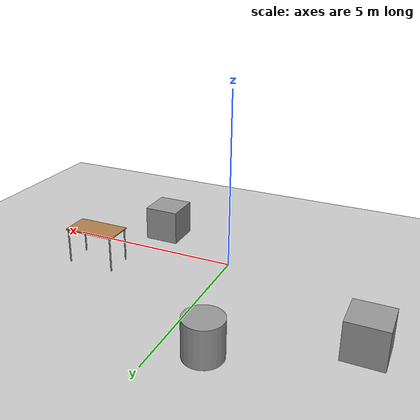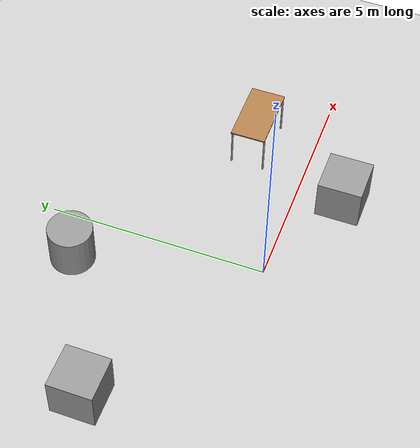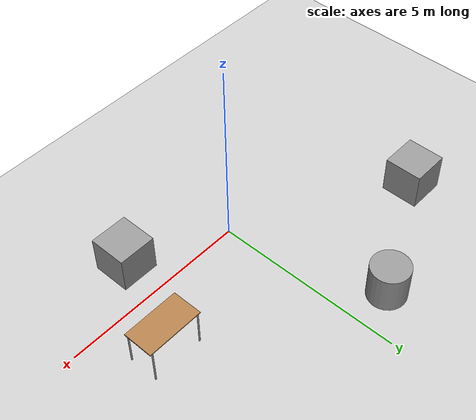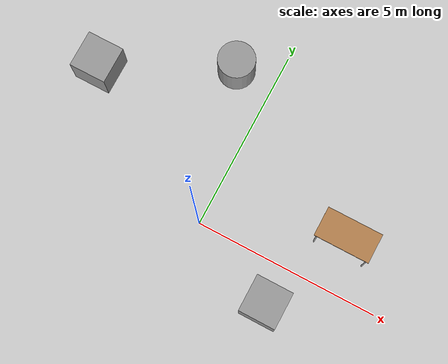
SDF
<sdf version="1.6">
 <world name="default">
  <light name="sun" type="directional">
   <pose>0 0 10 0 -0 0</pose>
   <diffuse>0.8 0.8 0.8 1</diffuse>
   <specular>0.2 0.2 0.2 1</specular>
   <attenuation>
    <range>1000</range>
    <constant>0.9</constant>
    <linear>0.01</linear>
    <quadratic>0.001</quadratic>
   </attenuation>
   <direction>-0.5 0.1 -0.9</direction>
  </light>
  <model name="ground_plane">
   <static>1</static>
   <link name="link">
    <collision name="collision">
     <geometry><plane><normal>0 0 1</normal><size>100 100</size></plane></geometry>
     <surface>
      <contact><collide_bitmask>65535</collide_bitmask></contact>
      <friction><ode><mu>100</mu><mu2>50</mu2></ode></friction>
     </surface>
    </collision>
    <visual name="visual">
     <cast_shadows>0</cast_shadows>
     <geometry><plane><normal>0 0 1</normal><size>100 100</size></plane></geometry>
     <material>
      <script><uri>file://media/materials/scripts/gazebo.material</uri><name>Gazebo/Grey</name></script>
     </material>
    </visual>
   </link>
  </model>
  <gravity>0 0 -9.8</gravity>
  <magnetic_field>6e-06 2.3e-05 -4.2e-05</magnetic_field>
  <atmosphere type="adiabatic"/>
  <physics name="default_physics" default="0" type="ode">
   <max_step_size>0.001</max_step_size>
   <real_time_factor>1</real_time_factor>
   <real_time_update_rate>1000</real_time_update_rate>
  </physics>
  <scene><ambient>0.4 0.4 0.4 1</ambient><background>0.7 0.7 0.7 1</background><shadows>1</shadows></scene>
  <audio><device>default</device></audio>
  <spherical_coordinates>
   <surface_model>EARTH_WGS84</surface_model>
   <latitude_deg>0</latitude_deg>
   <longitude_deg>0</longitude_deg>
   <elevation>0</elevation>
   <heading_deg>0</heading_deg>
  </spherical_coordinates>
  <model name="unit_box">
   <pose>-4.26808 2.44192 0.5 -0 -0 -0</pose>
   <link name="link">
    <inertial>
     <mass>1</mass>
     <inertia>
      <ixx>0.166667</ixx>
      <ixy>0</ixy>
      <ixz>0</ixz>
      <iyy>0.166667</iyy>
      <iyz>0</iyz>
      <izz>0.166667</izz>
     </inertia>
    </inertial>
    <collision name="collision"><geometry><box><size>1 1 1</size></box></geometry></collision>
    <visual name="visual">
     <geometry><box><size>1 1 1</size></box></geometry>
     <material>
      <script><name>Gazebo/Grey</name><uri>file://media/materials/scripts/gazebo.material</uri></script>
     </material>
    </visual>
   </link>
  </model>
  <model name="unit_box_0">
   <pose>2.4545 -1.05257 0.5 0 -0 0</pose>
   <link name="link">
    <inertial>
     <mass>1</mass>
     <inertia>
      <ixx>0.166667</ixx>
      <ixy>0</ixy>
      <ixz>0</ixz>
      <iyy>0.166667</iyy>
      <iyz>0</iyz>
      <izz>0.166667</izz>
     </inertia>
    </inertial>
    <collision name="collision"><geometry><box><size>1 1 1</size></box></geometry></collision>
    <visual name="visual">
     <geometry><box><size>1 1 1</size></box></geometry>
     <material>
      <script><name>Gazebo/Grey</name><uri>file://media/materials/scripts/gazebo.material</uri></script>
     </material>
    </visual>
   </link>
  </model>
  <model name="unit_cylinder">
   <pose>-1.06706 4.06157 0.499997 3e-06 4e-06 -0</pose>
   <link name="link">
    <inertial>
     <mass>1</mass>
     <inertia><ixx>0.145833</ixx><ixy>0</ixy><ixz>0</ixz><iyy>0.145833</iyy><iyz>0</iyz><izz>0.125</izz></inertia>
    </inertial>
    <collision name="collision">
     <geometry><cylinder><radius>0.5</radius><length>1</length></cylinder></geometry>
    </collision>
    <visual name="visual">
     <geometry><cylinder><radius>0.5</radius><length>1</length></cylinder></geometry>
     <material>
      <script><name>Gazebo/Grey</name><uri>file://media/materials/scripts/gazebo.material</uri></script>
     </material>
    </visual>
   </link>
  </model>
  <model name="table">
   <static>1</static>
   <link name="link">
    <collision name="surface">
     <pose>0 0 1 0 -0 0</pose>
     <geometry><box><size>1.5 0.8 0.03</size></box></geometry>
     <surface><friction><ode><mu>0.6</mu><mu2>0.6</mu2></ode></friction></surface>
    </collision>
    <visual name="visual1">
     <pose>0 0 1 0 -0 0</pose>
     <geometry><box><size>1.5 0.8 0.03</size></box></geometry>
     <material>
      <script><uri>file://media/materials/scripts/gazebo.material</uri><name>Gazebo/Wood</name></script>
     </material>
    </visual>
    <collision name="front_left_leg">
     <pose>0.68 0.38 0.5 0 -0 0</pose>
     <geometry><cylinder><radius>0.02</radius><length>1</length></cylinder></geometry>
    </collision>
    <visual name="front_left_leg">
     <pose>0.68 0.38 0.5 0 -0 0</pose>
     <geometry><cylinder><radius>0.02</radius><length>1</length></cylinder></geometry>
     <material>
      <script><uri>file://media/materials/scripts/gazebo.material</uri><name>Gazebo/Grey</name></script>
     </material>
    </visual>
    <collision name="front_right_leg">
     <pose>0.68 -0.38 0.5 0 -0 0</pose>
     <geometry><cylinder><radius>0.02</radius><length>1</length></cylinder></geometry>
    </collision>
    <visual name="front_right_leg">
     <pose>0.68 -0.38 0.5 0 -0 0</pose>
     <geometry><cylinder><radius>0.02</radius><length>1</length></cylinder></geometry>
     <material>
      <script><uri>file://media/materials/scripts/gazebo.material</uri><name>Gazebo/Grey</name></script>
     </material>
    </visual>
    <collision name="back_right_leg">
     <pose>-0.68 -0.38 0.5 0 -0 0</pose>
     <geometry><cylinder><radius>0.02</radius><length>1</length></cylinder></geometry>
    </collision>
    <visual name="back_right_leg">
     <pose>-0.68 -0.38 0.5 0 -0 0</pose>
     <geometry><cylinder><radius>0.02</radius><length>1</length></cylinder></geometry>
     <material>
      <script><uri>file://media/materials/scripts/gazebo.material</uri><name>Gazebo/Grey</name></script>
     </material>
    </visual>
    <collision name="back_left_leg">
     <pose>-0.68 0.38 0.5 0 -0 0</pose>
     <geometry><cylinder><radius>0.02</radius><length>1</length></cylinder></geometry>
    </collision>
    <visual name="back_left_leg">
     <pose>-0.68 0.38 0.5 0 -0 0</pose>
     <geometry><cylinder><radius>0.02</radius><length>1</length></cylinder></geometry>
     <material>
      <script><uri>file://media/materials/scripts/gazebo.material</uri><name>Gazebo/Grey</name></script>
     </material>
    </visual>
   </link>
   <pose>3.4894 1.34923 0 0 -0 0</pose>
  </model>
 </world>
</sdf>
